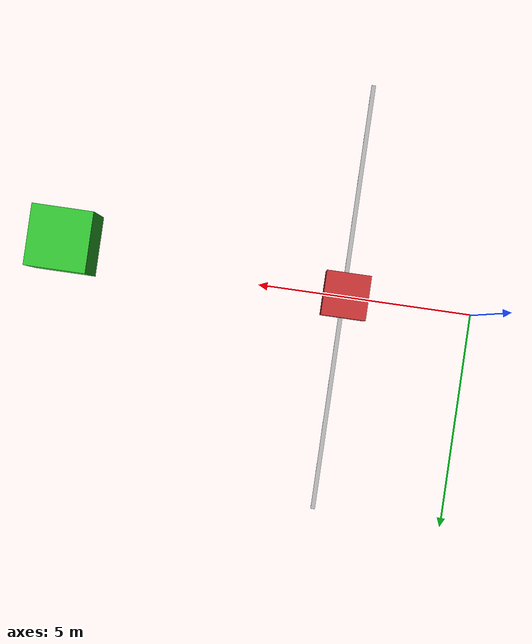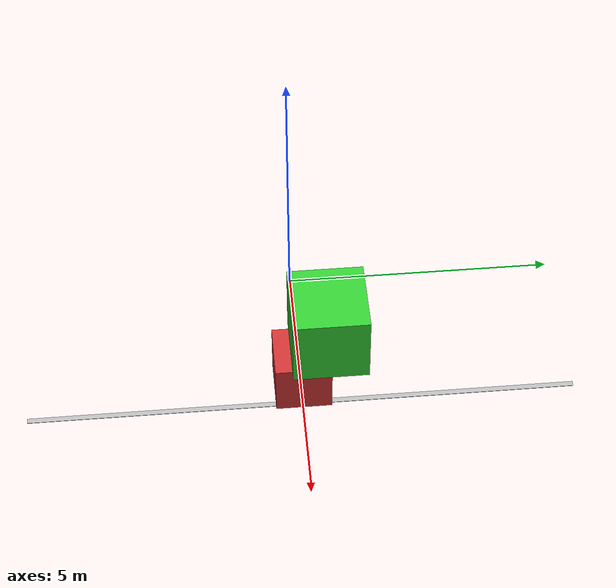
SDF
<?xml version="1.0" ?>
<sdf version="1.6">
  <world name="default">

    <plugin
      filename="libignition-gazebo-contact-system.so"
      name="ignition::gazebo::systems::Contact">
    </plugin>

<plugin filename="/home/david/workspace/src/ign-gazebo/examples/plugin/system_plugin/build/libAttachableJoint.so" name="attachable_joint::AttachableJoint">
    <detachtopic>/box2/detach</detachtopic>
    <attachtopic>/box2/attach</attachtopic>
</plugin>
    <plugin filename="/home/david/workspace/src/ign-gazebo/examples/plugin/Attacher/build/libAttacherPlugin.so"
            name="examples::AttacherPlugin">
</plugin>

  <model name="box1">
    <pose>3 0 1 0 0 0</pose>
    <link name="box_body">
      <visual name="v1">
        <geometry>
          <box><size>1 1 1</size></box>
        </geometry>
        <material>
          <diffuse>0.8 0.2 0.2 1</diffuse>
          <specular>1.0 0 0 1</specular>
        </material>
      </visual>
      <collision name="c1">
        <geometry>
          <box><size>1 1 1</size></box>
        </geometry>
      </collision>

    </link>
  </model>

  <model name="box2">
    <pose>8 0 8 0 0 0</pose>
    <link name="box_body">
      <visual name="v1">
        <geometry>
          <box><size>1 1 1</size></box>
        </geometry>
        <material>
          <diffuse>0.2 0.8 0.2 1</diffuse>
          <specular>1.0 0 0 1</specular>
        </material>
      </visual>
      <collision name="c1">
        <geometry>
          <box><size>1 1 1</size></box>
        </geometry>
      </collision>
    </link>
  </model>

    <model name="trigger">
      <pose>3 0 0 0 0 0</pose>
      <static>true</static>
      <link name="body">
        <visual name="v1">
          <geometry>
            <box><size>0.1 10 0.01</size></box>
          </geometry>
        </visual>
        <collision name="c1">
          <geometry>
            <box><size>0.1 10 0.01</size></box>
          </geometry>
        </collision>
        <sensor name='contact_sensor' type='contact'>
          <contact>
            <collision>c1</collision>
          </contact>
        </sensor>
      </link>
      <AttacherSensor name='AttacherContact'>
        </AttacherSensor>

      <plugin
        filename="libignition-gazebo-touchplugin-system.so"
        name="ignition::gazebo::systems::TouchPlugin">
        <target>vehicle_blue</target>
        <namespace>trigger</namespace>
        <time>0.001</time>
        <enabled>true</enabled>
      </plugin>

    </model>

  </world>
</sdf>
